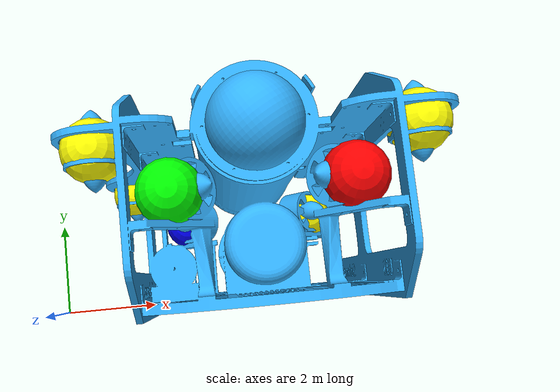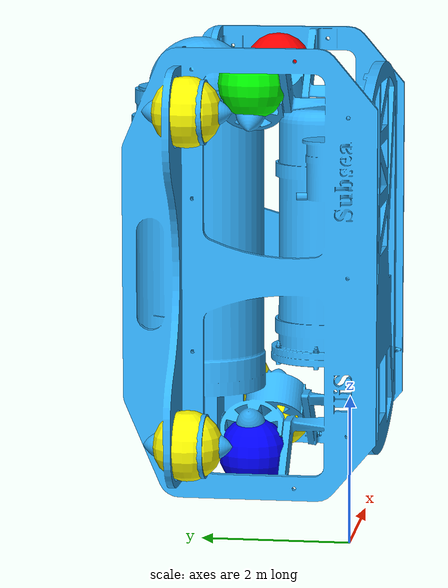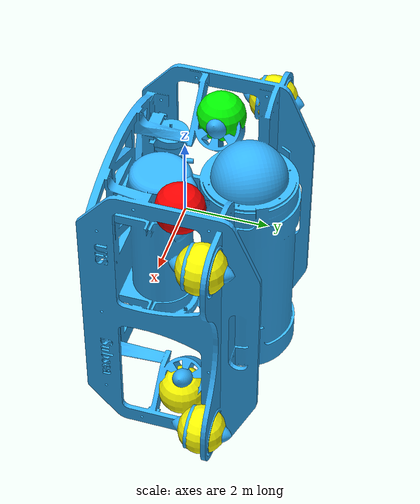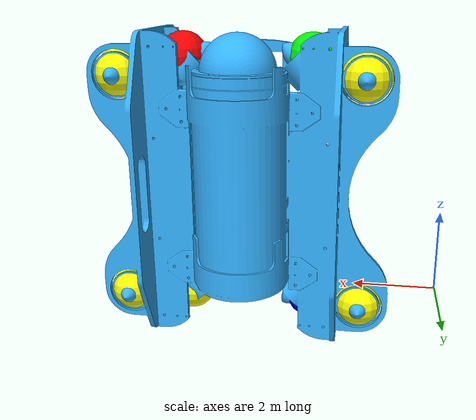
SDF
<?xml version="1.0" ?>
<sdf version="1.9">
<model name="uissubsea_rov">

  <static>false</static>

  <!-- ================= BASE ================= -->

  <link name="base_link">

    <inertial>
      <mass>60.0</mass>
      <inertia>
        <ixx>0.6</ixx>
        <iyy>0.6</iyy>
        <izz>0.8</izz>
        <ixy>0</ixy>
        <ixz>0</ixz>
        <iyz>0</iyz>
      </inertia>
    </inertial>

  <visual name="rov_visual">
  <pose>0 0 0 0 0 0</pose>
    <geometry>
      <mesh>

        <uri>model://uissubsea_rov/meshes/rov.stl</uri>
        <scale>0.01 0.01 0.01</scale>
      </mesh>
    </geometry>

    <material>
      <ambient>0 0.5 1 1</ambient>
      <diffuse>0.2 0.7 1 1</diffuse>
      <specular>0.1 0.1 0.1 1</specular>
    </material>

  </visual>

  <!-- COLLISION -->
  <collision name="rov_collision">
  <!-- center box on mesh: STL center=(431.5,179.3,320)mm * 0.001 -->
  <pose>0.4315 0.1793 0.32 0 0 0</pose>
    <geometry>
      <box>
        <size>0.61 0.38 0.64</size>
      </box>
    </geometry>
  </collision>

  </link>

  <!-- ================= REFERENCE FRAME ================= -->

  <link name="reference_frame">
    <pose>0 0 0 0 0 0</pose>

    <inertial>
      <mass>0.001</mass>
      <inertia>
        <ixx>0.0001</ixx>
        <iyy>0.0001</iyy>
        <izz>0.0001</izz>
      </inertia>
    </inertial>

  </link>

  <joint name="reference_frame_joint" type="fixed">
    <parent>base_link</parent>
    <child>reference_frame</child>
  </joint>

  <!-- ================= THRUSTERS ================= -->

  <!-- Thruster positions = absolute STL coords (mm) * 0.001 -->
  <!--front left bottom -->
  <link name="thruster_fl">
    <pose relative_to="base_link">5.6641 1.72599 5.84761 0 0 0</pose>
    <!-- TEMP MARKER: remove before release -->
    <visual name="marker_fl">
      <geometry><sphere><radius>0.5</radius></sphere></geometry>
      <material><ambient>1 0 0 1</ambient><diffuse>1 0 0 1</diffuse></material>
    </visual>
  </link>

  <!--front right bottom -->
  <link name="thruster_fr">
    <pose relative_to="base_link">2.96659 1.72599 5.84761 0 0 0</pose>
    <!-- TEMP MARKER: remove before release -->
    <visual name="marker_fr">
      <geometry><sphere><radius>0.5</radius></sphere></geometry>
      <material><ambient>0 1 0 1</ambient><diffuse>0 1 0 1</diffuse></material>
    </visual>
  </link>
  <!--rear right bottom -->
  <link name="thruster_bl">
    <pose relative_to="base_link">2.96659 1.72599 0.55239 0 0 0</pose>
    <!-- TEMP MARKER: remove before release -->
    <visual name="marker_bl">
      <geometry><sphere><radius>0.5</radius></sphere></geometry>
      <material><ambient>0 0 1 1</ambient><diffuse>0 0 1 1</diffuse></material>
    </visual>
  </link>
  <!--rear left bottom -->
  <link name="thruster_br">
    <pose relative_to="base_link">5.6641 1.72599 0.55239 0 0 0</pose>
    <!-- TEMP MARKER: remove before release -->
    <visual name="marker_br">
      <geometry><sphere><radius>0.5</radius></sphere></geometry>
      <material><ambient>1 1 0 1</ambient><diffuse>1 1 0 1</diffuse></material>
    </visual>
  </link>

    <!--front left top -->
  <link name="thruster_br_top">
    <pose relative_to="base_link">6.76535 2.493 5.55 0 0 0</pose>
    <!-- TEMP MARKER: remove before release -->
    <visual name="marker_br">
      <geometry><sphere><radius>0.5</radius></sphere></geometry>
      <material><ambient>1 1 0 1</ambient><diffuse>1 1 0 1</diffuse></material>
    </visual>
  </link>

    <!--front right top -->
  <link name="thruster_br_bottom">
    <pose relative_to="base_link">1.86535 2.493 5.55 0 0 0</pose>
    <!-- TEMP MARKER: remove before release -->
    <visual name="marker_br">
      <geometry><sphere><radius>0.5</radius></sphere></geometry>
      <material><ambient>1 1 0 1</ambient><diffuse>1 1 0 1</diffuse></material>
    </visual>
  </link>

    <!--rear right top -->
  <link name="thruster_br bottom2">
    <pose relative_to="base_link">1.86535 2.493 0.85 0 0 0</pose>
    <!-- TEMP MARKER: remove before release -->
    <visual name="marker_br">
      <geometry><sphere><radius>0.5</radius></sphere></geometry>
      <material><ambient>1 1 0 1</ambient><diffuse>1 1 0 1</diffuse></material>
    </visual>
  </link>

    <!--rear left top -->
  <link name="thruster_br bottom3">
    <pose relative_to="base_link">6.76535 2.493 0.85 0 0 0</pose>
    <!-- TEMP MARKER: remove before release -->
    <visual name="marker_br">
      <geometry><sphere><radius>0.5</radius></sphere></geometry>
      <material><ambient>1 1 0 1</ambient><diffuse>1 1 0 1</diffuse></material>
    </visual>
  </link>

  <!-- ================= JOINTS ================= -->

  <joint name="thruster_fl_joint" type="fixed">
    <parent>base_link</parent>
    <child>thruster_fl</child>
  </joint>

  <joint name="thruster_fr_joint" type="fixed">
    <parent>base_link</parent>
    <child>thruster_fr</child>
  </joint>

  <joint name="thruster_bl_joint" type="fixed">
    <parent>base_link</parent>
    <child>thruster_bl</child>
  </joint>

  <joint name="thruster_br_joint" type="fixed">
    <parent>base_link</parent>
    <child>thruster_br</child>
  </joint>

  <!-- ================= CONTROL ================= -->
  <plugin
    filename="gz-sim-thruster-system"
    name="gz::sim::systems::Thruster">

    <thruster>
      <link_name>thruster_fl</link_name>
      <direction>0 0 1</direction>
      <max_thrust>15</max_thrust>
    </thruster>

    <thruster>
      <link_name>thruster_fr</link_name>
      <direction>0 0 1</direction>
      <max_thrust>15</max_thrust>
    </thruster>

    <thruster>
      <link_name>thruster_bl</link_name>
      <direction>0 0 1</direction>
      <max_thrust>15</max_thrust>
    </thruster>

    <thruster>
      <link_name>thruster_br</link_name>
      <direction>0 0 1</direction>
      <max_thrust>15</max_thrust>
    </thruster>

  </plugin>

  <plugin
    filename="gz-sim-hydrodynamics-system"
    name="gz::sim::systems::Hydrodynamics">

    <link_name>base_link</link_name>

    <linear_drag>40 40 80</linear_drag>
    <angular_drag>5 5 5</angular_drag>

  </plugin>

</model>
</sdf>
